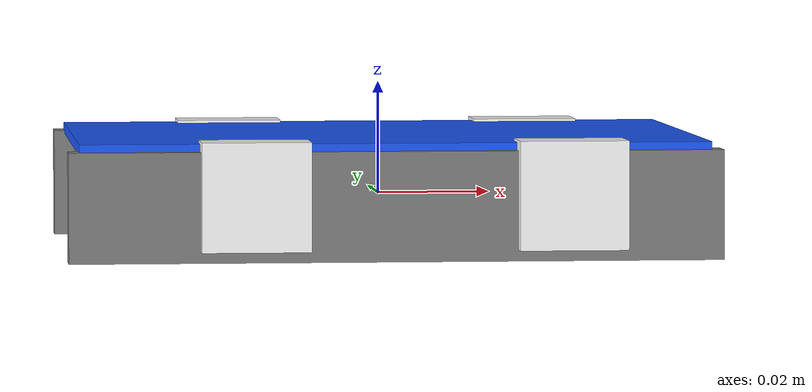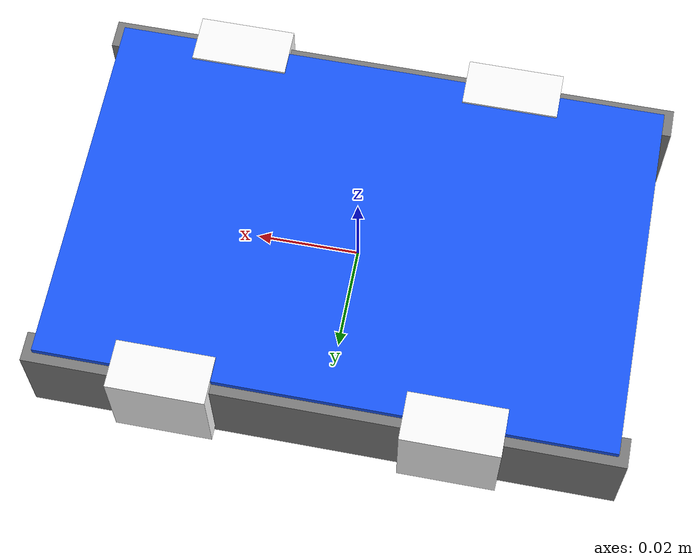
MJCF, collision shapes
<mujoco model="pcr_plate_96well">
  <compiler angle="radian" meshdir="../../assets/" />

  <asset>
            <mesh name="pcr_plate_96well-visual_visual" file="container/pcr_plate_96well_vis/visual.obj" scale="0.00095 0.00095 0.00095" />
  </asset>

  <worldbody>
    <body name="pcr_plate_96well">
      <geom name="grip_left" size="0.0095 0.00475 0.0095" pos="0.0304 -0.0361 0.0019"
            type="box" group="0" rgba="1 1 1 0"
            friction="0.5  0.5 0.1" solref="0.005 1" solimp="0.6 0.8 0.01"/>
      <geom name="grip_left2" size="0.0095 0.00475 0.0095" pos="-0.0247 -0.0361 0.0019"
            type="box" group="0" rgba="1 1 1 0"
            friction="0.5  0.5 0.1" solref="0.005 1" solimp="0.6 0.8 0.01"/>

      <geom name="grip_right" size="0.0095 0.00475 0.0095" pos="0.0304 0.0361 0.0019"
            type="box" group="0" rgba="1 1 1 0"
            friction="0.5  0.5 0.1" solref="0.005 1" solimp="0.6 0.8 0.01"/>
      <geom name="grip_right2" size="0.0095 0.00475 0.0095" pos="-0.0247 0.0361 0.0019"
            type="box" group="0" rgba="1 1 1 0"
            friction="0.5  0.5 0.1" solref="0.005 1" solimp="0.6 0.8 0.01"/>

      <geom size="0.057 0.0028975 0.009595" pos="0 0.0351025 0" type="box" group="3"
            friction="2.5 0.3 0.05" solref="0.01 1.5" solimp="0.85 0.95 0.005" />
      <geom size="0.057 0.0028975 0.009595" pos="0 -0.0351025 0" type="box" group="3"
            friction="2.5 0.3 0.05" solref="0.01 1.5" solimp="0.85 0.95 0.005" />

      <geom type="mesh" contype="0" conaffinity="0" group="2" mesh="pcr_plate_96well-visual_visual" rgba="0.1 0.35 1 1" />

                  <geom name="surface_texture" type="box" size="0.0551 0.0361 0.00095" pos="0 0 0.009975"
            friction="2 0.4 0.08" solref="0.015 1.8" solimp="0.88 0.96 0.003"
            rgba="0.1 0.35 1 0.18"/>
    </body>
  </worldbody>
</mujoco>
